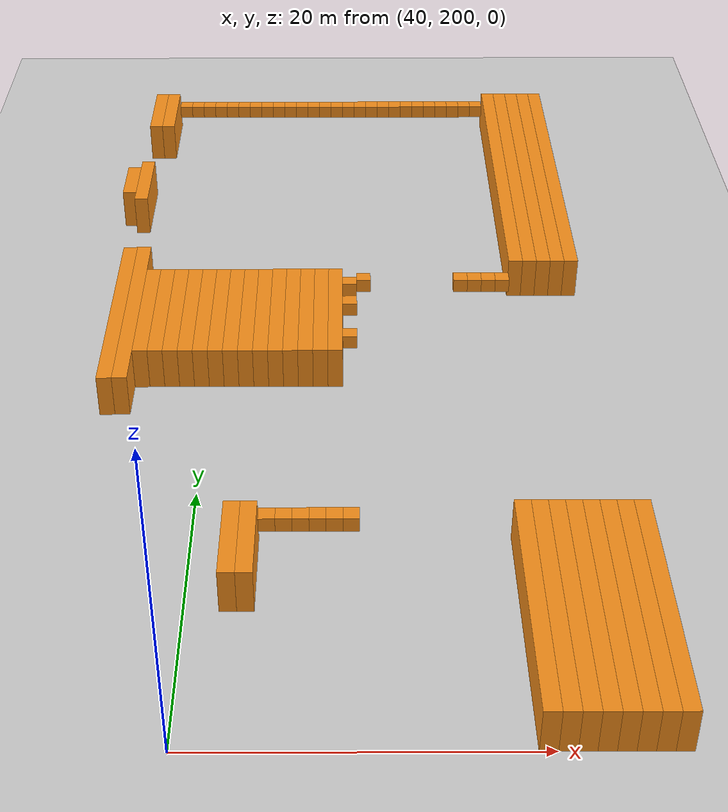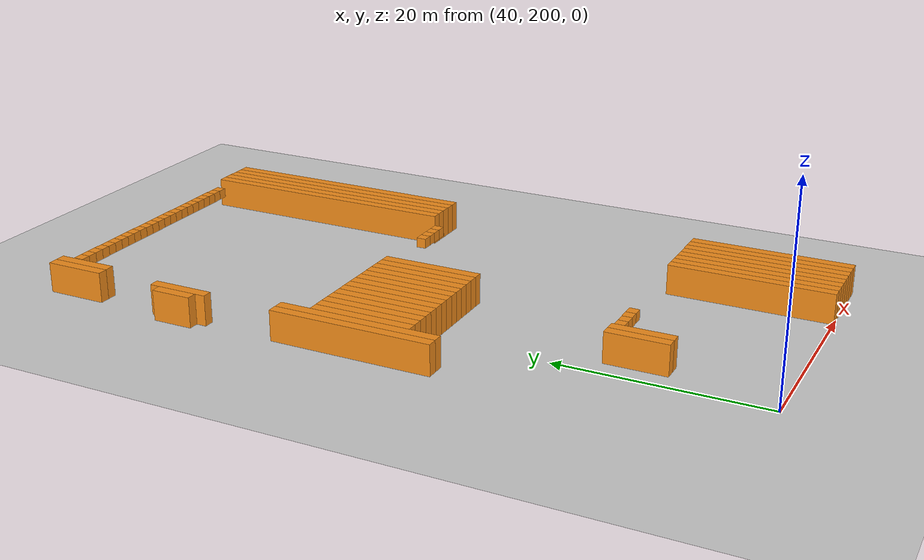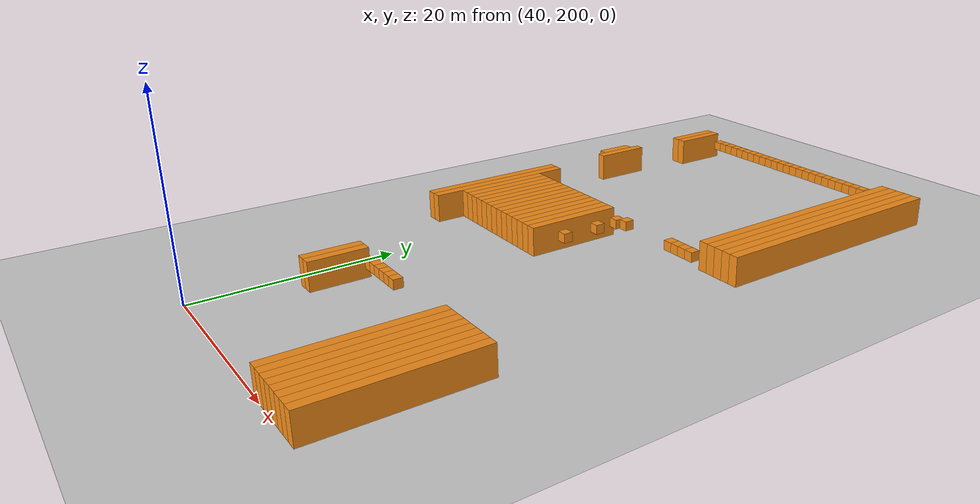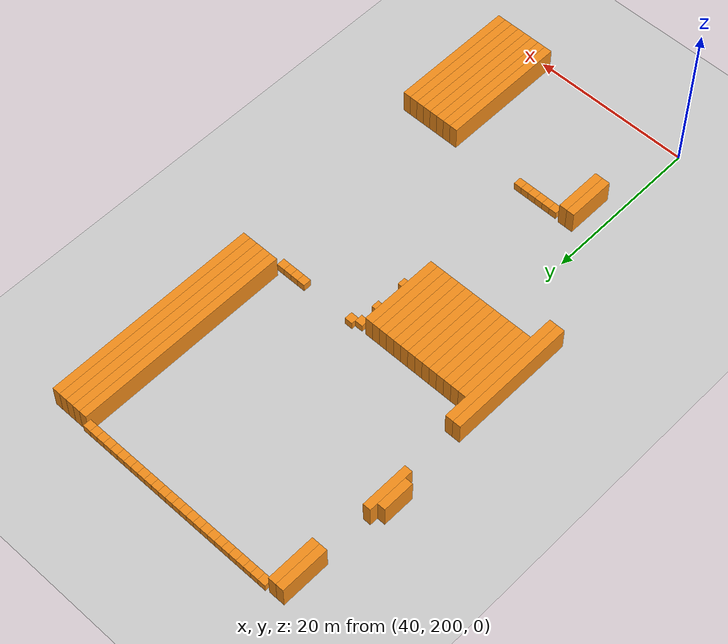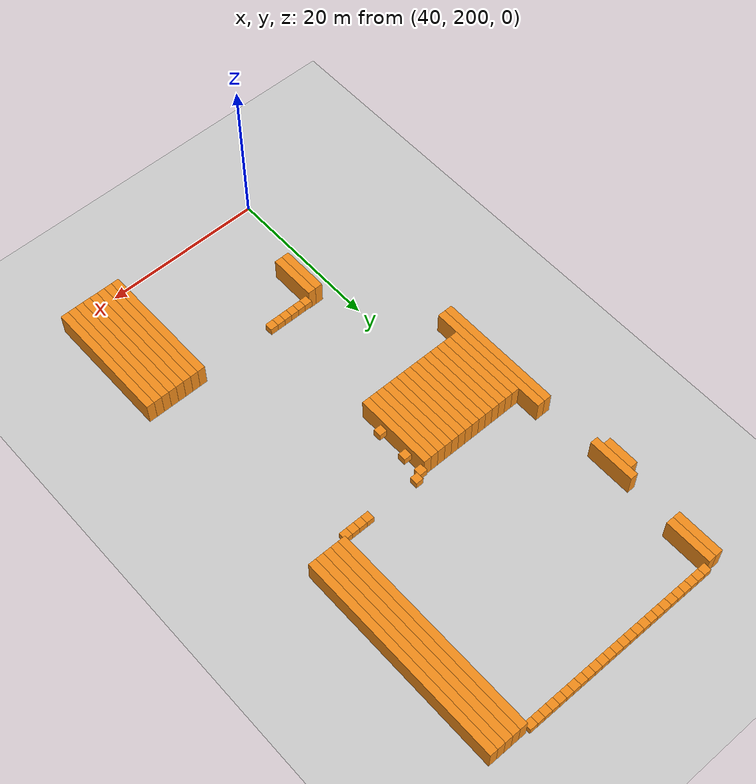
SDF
<sdf version="1.6">
 <world name="default">
  <include><uri>model://ground_plane</uri></include>
  <model name="unit_box_381">
   <pose>32.50   254.00     1.50 0 0 0</pose>
   <static>1</static>
   <link name="link">
    <inertial>
     <mass>5000</mass>
     <inertia><ixx>200</ixx><ixy>0</ixy><ixz>0</ixz><iyy>200</iyy><iyz>0</iyz><izz>200</izz></inertia>
    </inertial>
    <collision name="collision"><geometry><box><size>1 4 3</size></box></geometry></collision>
    <visual name="visual">
     <geometry><box><size>1 4 3</size></box></geometry>
     <material>
      <script><name>Gazebo/Orange</name><uri>file://media/materials/scripts/gazebo.material</uri></script>
     </material>
    </visual>
   </link>
  </model>
  <model name="unit_box_386">
   <pose>33.50   236.00     1.50 0 0 0</pose>
   <static>1</static>
   <link name="link">
    <inertial>
     <mass>5000</mass>
     <inertia><ixx>200</ixx><ixy>0</ixy><ixz>0</ixz><iyy>200</iyy><iyz>0</iyz><izz>200</izz></inertia>
    </inertial>
    <collision name="collision"><geometry><box><size>1 16 3</size></box></geometry></collision>
    <visual name="visual">
     <geometry><box><size>1 16 3</size></box></geometry>
     <material>
      <script><name>Gazebo/Orange</name><uri>file://media/materials/scripts/gazebo.material</uri></script>
     </material>
    </visual>
   </link>
  </model>
  <model name="unit_box_387">
   <pose>33.50   254.00     1.50 0 0 0</pose>
   <static>1</static>
   <link name="link">
    <inertial>
     <mass>5000</mass>
     <inertia><ixx>200</ixx><ixy>0</ixy><ixz>0</ixz><iyy>200</iyy><iyz>0</iyz><izz>200</izz></inertia>
    </inertial>
    <collision name="collision"><geometry><box><size>1 6 3</size></box></geometry></collision>
    <visual name="visual">
     <geometry><box><size>1 6 3</size></box></geometry>
     <material>
      <script><name>Gazebo/Orange</name><uri>file://media/materials/scripts/gazebo.material</uri></script>
     </material>
    </visual>
   </link>
  </model>
  <model name="unit_box_388">
   <pose>33.50   266.00     1.50 0 0 0</pose>
   <static>1</static>
   <link name="link">
    <inertial>
     <mass>5000</mass>
     <inertia><ixx>200</ixx><ixy>0</ixy><ixz>0</ixz><iyy>200</iyy><iyz>0</iyz><izz>200</izz></inertia>
    </inertial>
    <collision name="collision"><geometry><box><size>1 6 3</size></box></geometry></collision>
    <visual name="visual">
     <geometry><box><size>1 6 3</size></box></geometry>
     <material>
      <script><name>Gazebo/Orange</name><uri>file://media/materials/scripts/gazebo.material</uri></script>
     </material>
    </visual>
   </link>
  </model>
  <model name="unit_box_393">
   <pose>34.50   236.00     1.50 0 0 0</pose>
   <static>1</static>
   <link name="link">
    <inertial>
     <mass>5000</mass>
     <inertia><ixx>200</ixx><ixy>0</ixy><ixz>0</ixz><iyy>200</iyy><iyz>0</iyz><izz>200</izz></inertia>
    </inertial>
    <collision name="collision"><geometry><box><size>1 16 3</size></box></geometry></collision>
    <visual name="visual">
     <geometry><box><size>1 16 3</size></box></geometry>
     <material>
      <script><name>Gazebo/Orange</name><uri>file://media/materials/scripts/gazebo.material</uri></script>
     </material>
    </visual>
   </link>
  </model>
  <model name="unit_box_394">
   <pose>34.50   266.00     1.50 0 0 0</pose>
   <static>1</static>
   <link name="link">
    <inertial>
     <mass>5000</mass>
     <inertia><ixx>200</ixx><ixy>0</ixy><ixz>0</ixz><iyy>200</iyy><iyz>0</iyz><izz>200</izz></inertia>
    </inertial>
    <collision name="collision"><geometry><box><size>1 6 3</size></box></geometry></collision>
    <visual name="visual">
     <geometry><box><size>1 6 3</size></box></geometry>
     <material>
      <script><name>Gazebo/Orange</name><uri>file://media/materials/scripts/gazebo.material</uri></script>
     </material>
    </visual>
   </link>
  </model>
  <model name="unit_box_399">
   <pose>35.50   236.00     1.50 0 0 0</pose>
   <static>1</static>
   <link name="link">
    <inertial>
     <mass>5000</mass>
     <inertia><ixx>200</ixx><ixy>0</ixy><ixz>0</ixz><iyy>200</iyy><iyz>0</iyz><izz>200</izz></inertia>
    </inertial>
    <collision name="collision"><geometry><box><size>1 10 3</size></box></geometry></collision>
    <visual name="visual">
     <geometry><box><size>1 10 3</size></box></geometry>
     <material>
      <script><name>Gazebo/Orange</name><uri>file://media/materials/scripts/gazebo.material</uri></script>
     </material>
    </visual>
   </link>
  </model>
  <model name="unit_box_400">
   <pose>35.50   269.00     1.50 0 0 0</pose>
   <static>1</static>
   <link name="link">
    <inertial>
     <mass>5000</mass>
     <inertia><ixx>200</ixx><ixy>0</ixy><ixz>0</ixz><iyy>200</iyy><iyz>0</iyz><izz>200</izz></inertia>
    </inertial>
    <collision name="collision"><geometry><box><size>1 1 1</size></box></geometry></collision>
    <visual name="visual">
     <geometry><box><size>1 1 1</size></box></geometry>
     <material>
      <script><name>Gazebo/Orange</name><uri>file://media/materials/scripts/gazebo.material</uri></script>
     </material>
    </visual>
   </link>
  </model>
  <model name="unit_box_404">
   <pose>36.50   236.00     1.50 0 0 0</pose>
   <static>1</static>
   <link name="link">
    <inertial>
     <mass>5000</mass>
     <inertia><ixx>200</ixx><ixy>0</ixy><ixz>0</ixz><iyy>200</iyy><iyz>0</iyz><izz>200</izz></inertia>
    </inertial>
    <collision name="collision"><geometry><box><size>1 10 3</size></box></geometry></collision>
    <visual name="visual">
     <geometry><box><size>1 10 3</size></box></geometry>
     <material>
      <script><name>Gazebo/Orange</name><uri>file://media/materials/scripts/gazebo.material</uri></script>
     </material>
    </visual>
   </link>
  </model>
  <model name="unit_box_405">
   <pose>36.50   269.00     1.50 0 0 0</pose>
   <static>1</static>
   <link name="link">
    <inertial>
     <mass>5000</mass>
     <inertia><ixx>200</ixx><ixy>0</ixy><ixz>0</ixz><iyy>200</iyy><iyz>0</iyz><izz>200</izz></inertia>
    </inertial>
    <collision name="collision"><geometry><box><size>1 1 1</size></box></geometry></collision>
    <visual name="visual">
     <geometry><box><size>1 1 1</size></box></geometry>
     <material>
      <script><name>Gazebo/Orange</name><uri>file://media/materials/scripts/gazebo.material</uri></script>
     </material>
    </visual>
   </link>
  </model>
  <model name="unit_box_409">
   <pose>37.50   236.00     1.50 0 0 0</pose>
   <static>1</static>
   <link name="link">
    <inertial>
     <mass>5000</mass>
     <inertia><ixx>200</ixx><ixy>0</ixy><ixz>0</ixz><iyy>200</iyy><iyz>0</iyz><izz>200</izz></inertia>
    </inertial>
    <collision name="collision"><geometry><box><size>1 10 3</size></box></geometry></collision>
    <visual name="visual">
     <geometry><box><size>1 10 3</size></box></geometry>
     <material>
      <script><name>Gazebo/Orange</name><uri>file://media/materials/scripts/gazebo.material</uri></script>
     </material>
    </visual>
   </link>
  </model>
  <model name="unit_box_410">
   <pose>37.50   269.00     1.50 0 0 0</pose>
   <static>1</static>
   <link name="link">
    <inertial>
     <mass>5000</mass>
     <inertia><ixx>200</ixx><ixy>0</ixy><ixz>0</ixz><iyy>200</iyy><iyz>0</iyz><izz>200</izz></inertia>
    </inertial>
    <collision name="collision"><geometry><box><size>1 1 1</size></box></geometry></collision>
    <visual name="visual">
     <geometry><box><size>1 1 1</size></box></geometry>
     <material>
      <script><name>Gazebo/Orange</name><uri>file://media/materials/scripts/gazebo.material</uri></script>
     </material>
    </visual>
   </link>
  </model>
  <model name="unit_box_414">
   <pose>38.50   236.00     1.50 0 0 0</pose>
   <static>1</static>
   <link name="link">
    <inertial>
     <mass>5000</mass>
     <inertia><ixx>200</ixx><ixy>0</ixy><ixz>0</ixz><iyy>200</iyy><iyz>0</iyz><izz>200</izz></inertia>
    </inertial>
    <collision name="collision"><geometry><box><size>1 10 3</size></box></geometry></collision>
    <visual name="visual">
     <geometry><box><size>1 10 3</size></box></geometry>
     <material>
      <script><name>Gazebo/Orange</name><uri>file://media/materials/scripts/gazebo.material</uri></script>
     </material>
    </visual>
   </link>
  </model>
  <model name="unit_box_415">
   <pose>38.50   269.00     1.50 0 0 0</pose>
   <static>1</static>
   <link name="link">
    <inertial>
     <mass>5000</mass>
     <inertia><ixx>200</ixx><ixy>0</ixy><ixz>0</ixz><iyy>200</iyy><iyz>0</iyz><izz>200</izz></inertia>
    </inertial>
    <collision name="collision"><geometry><box><size>1 1 1</size></box></geometry></collision>
    <visual name="visual">
     <geometry><box><size>1 1 1</size></box></geometry>
     <material>
      <script><name>Gazebo/Orange</name><uri>file://media/materials/scripts/gazebo.material</uri></script>
     </material>
    </visual>
   </link>
  </model>
  <model name="unit_box_420">
   <pose>39.50   236.00     1.50 0 0 0</pose>
   <static>1</static>
   <link name="link">
    <inertial>
     <mass>5000</mass>
     <inertia><ixx>200</ixx><ixy>0</ixy><ixz>0</ixz><iyy>200</iyy><iyz>0</iyz><izz>200</izz></inertia>
    </inertial>
    <collision name="collision"><geometry><box><size>1 10 3</size></box></geometry></collision>
    <visual name="visual">
     <geometry><box><size>1 10 3</size></box></geometry>
     <material>
      <script><name>Gazebo/Orange</name><uri>file://media/materials/scripts/gazebo.material</uri></script>
     </material>
    </visual>
   </link>
  </model>
  <model name="unit_box_421">
   <pose>39.50   269.00     1.50 0 0 0</pose>
   <static>1</static>
   <link name="link">
    <inertial>
     <mass>5000</mass>
     <inertia><ixx>200</ixx><ixy>0</ixy><ixz>0</ixz><iyy>200</iyy><iyz>0</iyz><izz>200</izz></inertia>
    </inertial>
    <collision name="collision"><geometry><box><size>1 1 1</size></box></geometry></collision>
    <visual name="visual">
     <geometry><box><size>1 1 1</size></box></geometry>
     <material>
      <script><name>Gazebo/Orange</name><uri>file://media/materials/scripts/gazebo.material</uri></script>
     </material>
    </visual>
   </link>
  </model>
  <model name="unit_box_426">
   <pose>40.50   236.00     1.50 0 0 0</pose>
   <static>1</static>
   <link name="link">
    <inertial>
     <mass>5000</mass>
     <inertia><ixx>200</ixx><ixy>0</ixy><ixz>0</ixz><iyy>200</iyy><iyz>0</iyz><izz>200</izz></inertia>
    </inertial>
    <collision name="collision"><geometry><box><size>1 10 3</size></box></geometry></collision>
    <visual name="visual">
     <geometry><box><size>1 10 3</size></box></geometry>
     <material>
      <script><name>Gazebo/Orange</name><uri>file://media/materials/scripts/gazebo.material</uri></script>
     </material>
    </visual>
   </link>
  </model>
  <model name="unit_box_427">
   <pose>40.50   269.00     1.50 0 0 0</pose>
   <static>1</static>
   <link name="link">
    <inertial>
     <mass>5000</mass>
     <inertia><ixx>200</ixx><ixy>0</ixy><ixz>0</ixz><iyy>200</iyy><iyz>0</iyz><izz>200</izz></inertia>
    </inertial>
    <collision name="collision"><geometry><box><size>1 1 1</size></box></geometry></collision>
    <visual name="visual">
     <geometry><box><size>1 1 1</size></box></geometry>
     <material>
      <script><name>Gazebo/Orange</name><uri>file://media/materials/scripts/gazebo.material</uri></script>
     </material>
    </visual>
   </link>
  </model>
  <model name="unit_box_434">
   <pose>41.50   236.00     1.50 0 0 0</pose>
   <static>1</static>
   <link name="link">
    <inertial>
     <mass>5000</mass>
     <inertia><ixx>200</ixx><ixy>0</ixy><ixz>0</ixz><iyy>200</iyy><iyz>0</iyz><izz>200</izz></inertia>
    </inertial>
    <collision name="collision"><geometry><box><size>1 10 3</size></box></geometry></collision>
    <visual name="visual">
     <geometry><box><size>1 10 3</size></box></geometry>
     <material>
      <script><name>Gazebo/Orange</name><uri>file://media/materials/scripts/gazebo.material</uri></script>
     </material>
    </visual>
   </link>
  </model>
  <model name="unit_box_435">
   <pose>41.50   269.00     1.50 0 0 0</pose>
   <static>1</static>
   <link name="link">
    <inertial>
     <mass>5000</mass>
     <inertia><ixx>200</ixx><ixy>0</ixy><ixz>0</ixz><iyy>200</iyy><iyz>0</iyz><izz>200</izz></inertia>
    </inertial>
    <collision name="collision"><geometry><box><size>1 1 1</size></box></geometry></collision>
    <visual name="visual">
     <geometry><box><size>1 1 1</size></box></geometry>
     <material>
      <script><name>Gazebo/Orange</name><uri>file://media/materials/scripts/gazebo.material</uri></script>
     </material>
    </visual>
   </link>
  </model>
  <model name="unit_box_446">
   <pose>42.50   213.00     1.50 0 0 0</pose>
   <static>1</static>
   <link name="link">
    <inertial>
     <mass>5000</mass>
     <inertia><ixx>200</ixx><ixy>0</ixy><ixz>0</ixz><iyy>200</iyy><iyz>0</iyz><izz>200</izz></inertia>
    </inertial>
    <collision name="collision"><geometry><box><size>1 6 3</size></box></geometry></collision>
    <visual name="visual">
     <geometry><box><size>1 6 3</size></box></geometry>
     <material>
      <script><name>Gazebo/Orange</name><uri>file://media/materials/scripts/gazebo.material</uri></script>
     </material>
    </visual>
   </link>
  </model>
  <model name="unit_box_447">
   <pose>42.50   236.00     1.50 0 0 0</pose>
   <static>1</static>
   <link name="link">
    <inertial>
     <mass>5000</mass>
     <inertia><ixx>200</ixx><ixy>0</ixy><ixz>0</ixz><iyy>200</iyy><iyz>0</iyz><izz>200</izz></inertia>
    </inertial>
    <collision name="collision"><geometry><box><size>1 10 3</size></box></geometry></collision>
    <visual name="visual">
     <geometry><box><size>1 10 3</size></box></geometry>
     <material>
      <script><name>Gazebo/Orange</name><uri>file://media/materials/scripts/gazebo.material</uri></script>
     </material>
    </visual>
   </link>
  </model>
  <model name="unit_box_448">
   <pose>42.50   269.00     1.50 0 0 0</pose>
   <static>1</static>
   <link name="link">
    <inertial>
     <mass>5000</mass>
     <inertia><ixx>200</ixx><ixy>0</ixy><ixz>0</ixz><iyy>200</iyy><iyz>0</iyz><izz>200</izz></inertia>
    </inertial>
    <collision name="collision"><geometry><box><size>1 1 1</size></box></geometry></collision>
    <visual name="visual">
     <geometry><box><size>1 1 1</size></box></geometry>
     <material>
      <script><name>Gazebo/Orange</name><uri>file://media/materials/scripts/gazebo.material</uri></script>
     </material>
    </visual>
   </link>
  </model>
  <model name="unit_box_461">
   <pose>43.50   213.00     1.50 0 0 0</pose>
   <static>1</static>
   <link name="link">
    <inertial>
     <mass>5000</mass>
     <inertia><ixx>200</ixx><ixy>0</ixy><ixz>0</ixz><iyy>200</iyy><iyz>0</iyz><izz>200</izz></inertia>
    </inertial>
    <collision name="collision"><geometry><box><size>1 6 3</size></box></geometry></collision>
    <visual name="visual">
     <geometry><box><size>1 6 3</size></box></geometry>
     <material>
      <script><name>Gazebo/Orange</name><uri>file://media/materials/scripts/gazebo.material</uri></script>
     </material>
    </visual>
   </link>
  </model>
  <model name="unit_box_462">
   <pose>43.50   236.00     1.50 0 0 0</pose>
   <static>1</static>
   <link name="link">
    <inertial>
     <mass>5000</mass>
     <inertia><ixx>200</ixx><ixy>0</ixy><ixz>0</ixz><iyy>200</iyy><iyz>0</iyz><izz>200</izz></inertia>
    </inertial>
    <collision name="collision"><geometry><box><size>1 10 3</size></box></geometry></collision>
    <visual name="visual">
     <geometry><box><size>1 10 3</size></box></geometry>
     <material>
      <script><name>Gazebo/Orange</name><uri>file://media/materials/scripts/gazebo.material</uri></script>
     </material>
    </visual>
   </link>
  </model>
  <model name="unit_box_463">
   <pose>43.50   269.00     1.50 0 0 0</pose>
   <static>1</static>
   <link name="link">
    <inertial>
     <mass>5000</mass>
     <inertia><ixx>200</ixx><ixy>0</ixy><ixz>0</ixz><iyy>200</iyy><iyz>0</iyz><izz>200</izz></inertia>
    </inertial>
    <collision name="collision"><geometry><box><size>1 1 1</size></box></geometry></collision>
    <visual name="visual">
     <geometry><box><size>1 1 1</size></box></geometry>
     <material>
      <script><name>Gazebo/Orange</name><uri>file://media/materials/scripts/gazebo.material</uri></script>
     </material>
    </visual>
   </link>
  </model>
  <model name="unit_box_476">
   <pose>44.50   216.00     1.50 0 0 0</pose>
   <static>1</static>
   <link name="link">
    <inertial>
     <mass>5000</mass>
     <inertia><ixx>200</ixx><ixy>0</ixy><ixz>0</ixz><iyy>200</iyy><iyz>0</iyz><izz>200</izz></inertia>
    </inertial>
    <collision name="collision"><geometry><box><size>1 1 1</size></box></geometry></collision>
    <visual name="visual">
     <geometry><box><size>1 1 1</size></box></geometry>
     <material>
      <script><name>Gazebo/Orange</name><uri>file://media/materials/scripts/gazebo.material</uri></script>
     </material>
    </visual>
   </link>
  </model>
  <model name="unit_box_477">
   <pose>44.50   236.00     1.50 0 0 0</pose>
   <static>1</static>
   <link name="link">
    <inertial>
     <mass>5000</mass>
     <inertia><ixx>200</ixx><ixy>0</ixy><ixz>0</ixz><iyy>200</iyy><iyz>0</iyz><izz>200</izz></inertia>
    </inertial>
    <collision name="collision"><geometry><box><size>1 10 3</size></box></geometry></collision>
    <visual name="visual">
     <geometry><box><size>1 10 3</size></box></geometry>
     <material>
      <script><name>Gazebo/Orange</name><uri>file://media/materials/scripts/gazebo.material</uri></script>
     </material>
    </visual>
   </link>
  </model>
  <model name="unit_box_478">
   <pose>44.50   269.00     1.50 0 0 0</pose>
   <static>1</static>
   <link name="link">
    <inertial>
     <mass>5000</mass>
     <inertia><ixx>200</ixx><ixy>0</ixy><ixz>0</ixz><iyy>200</iyy><iyz>0</iyz><izz>200</izz></inertia>
    </inertial>
    <collision name="collision"><geometry><box><size>1 1 1</size></box></geometry></collision>
    <visual name="visual">
     <geometry><box><size>1 1 1</size></box></geometry>
     <material>
      <script><name>Gazebo/Orange</name><uri>file://media/materials/scripts/gazebo.material</uri></script>
     </material>
    </visual>
   </link>
  </model>
  <model name="unit_box_491">
   <pose>45.50   216.00     1.50 0 0 0</pose>
   <static>1</static>
   <link name="link">
    <inertial>
     <mass>5000</mass>
     <inertia><ixx>200</ixx><ixy>0</ixy><ixz>0</ixz><iyy>200</iyy><iyz>0</iyz><izz>200</izz></inertia>
    </inertial>
    <collision name="collision"><geometry><box><size>1 1 1</size></box></geometry></collision>
    <visual name="visual">
     <geometry><box><size>1 1 1</size></box></geometry>
     <material>
      <script><name>Gazebo/Orange</name><uri>file://media/materials/scripts/gazebo.material</uri></script>
     </material>
    </visual>
   </link>
  </model>
  <model name="unit_box_492">
   <pose>45.50   236.00     1.50 0 0 0</pose>
   <static>1</static>
   <link name="link">
    <inertial>
     <mass>5000</mass>
     <inertia><ixx>200</ixx><ixy>0</ixy><ixz>0</ixz><iyy>200</iyy><iyz>0</iyz><izz>200</izz></inertia>
    </inertial>
    <collision name="collision"><geometry><box><size>1 10 3</size></box></geometry></collision>
    <visual name="visual">
     <geometry><box><size>1 10 3</size></box></geometry>
     <material>
      <script><name>Gazebo/Orange</name><uri>file://media/materials/scripts/gazebo.material</uri></script>
     </material>
    </visual>
   </link>
  </model>
  <model name="unit_box_493">
   <pose>45.50   269.00     1.50 0 0 0</pose>
   <static>1</static>
   <link name="link">
    <inertial>
     <mass>5000</mass>
     <inertia><ixx>200</ixx><ixy>0</ixy><ixz>0</ixz><iyy>200</iyy><iyz>0</iyz><izz>200</izz></inertia>
    </inertial>
    <collision name="collision"><geometry><box><size>1 1 1</size></box></geometry></collision>
    <visual name="visual">
     <geometry><box><size>1 1 1</size></box></geometry>
     <material>
      <script><name>Gazebo/Orange</name><uri>file://media/materials/scripts/gazebo.material</uri></script>
     </material>
    </visual>
   </link>
  </model>
  <model name="unit_box_505">
   <pose>46.50   216.00     1.50 0 0 0</pose>
   <static>1</static>
   <link name="link">
    <inertial>
     <mass>5000</mass>
     <inertia><ixx>200</ixx><ixy>0</ixy><ixz>0</ixz><iyy>200</iyy><iyz>0</iyz><izz>200</izz></inertia>
    </inertial>
    <collision name="collision"><geometry><box><size>1 1 1</size></box></geometry></collision>
    <visual name="visual">
     <geometry><box><size>1 1 1</size></box></geometry>
     <material>
      <script><name>Gazebo/Orange</name><uri>file://media/materials/scripts/gazebo.material</uri></script>
     </material>
    </visual>
   </link>
  </model>
  <model name="unit_box_506">
   <pose>46.50   236.00     1.50 0 0 0</pose>
   <static>1</static>
   <link name="link">
    <inertial>
     <mass>5000</mass>
     <inertia><ixx>200</ixx><ixy>0</ixy><ixz>0</ixz><iyy>200</iyy><iyz>0</iyz><izz>200</izz></inertia>
    </inertial>
    <collision name="collision"><geometry><box><size>1 10 3</size></box></geometry></collision>
    <visual name="visual">
     <geometry><box><size>1 10 3</size></box></geometry>
     <material>
      <script><name>Gazebo/Orange</name><uri>file://media/materials/scripts/gazebo.material</uri></script>
     </material>
    </visual>
   </link>
  </model>
  <model name="unit_box_507">
   <pose>46.50   269.00     1.50 0 0 0</pose>
   <static>1</static>
   <link name="link">
    <inertial>
     <mass>5000</mass>
     <inertia><ixx>200</ixx><ixy>0</ixy><ixz>0</ixz><iyy>200</iyy><iyz>0</iyz><izz>200</izz></inertia>
    </inertial>
    <collision name="collision"><geometry><box><size>1 1 1</size></box></geometry></collision>
    <visual name="visual">
     <geometry><box><size>1 1 1</size></box></geometry>
     <material>
      <script><name>Gazebo/Orange</name><uri>file://media/materials/scripts/gazebo.material</uri></script>
     </material>
    </visual>
   </link>
  </model>
  <model name="unit_box_518">
   <pose>47.50   216.00     1.50 0 0 0</pose>
   <static>1</static>
   <link name="link">
    <inertial>
     <mass>5000</mass>
     <inertia><ixx>200</ixx><ixy>0</ixy><ixz>0</ixz><iyy>200</iyy><iyz>0</iyz><izz>200</izz></inertia>
    </inertial>
    <collision name="collision"><geometry><box><size>1 1 1</size></box></geometry></collision>
    <visual name="visual">
     <geometry><box><size>1 1 1</size></box></geometry>
     <material>
      <script><name>Gazebo/Orange</name><uri>file://media/materials/scripts/gazebo.material</uri></script>
     </material>
    </visual>
   </link>
  </model>
  <model name="unit_box_519">
   <pose>47.50   236.00     1.50 0 0 0</pose>
   <static>1</static>
   <link name="link">
    <inertial>
     <mass>5000</mass>
     <inertia><ixx>200</ixx><ixy>0</ixy><ixz>0</ixz><iyy>200</iyy><iyz>0</iyz><izz>200</izz></inertia>
    </inertial>
    <collision name="collision"><geometry><box><size>1 10 3</size></box></geometry></collision>
    <visual name="visual">
     <geometry><box><size>1 10 3</size></box></geometry>
     <material>
      <script><name>Gazebo/Orange</name><uri>file://media/materials/scripts/gazebo.material</uri></script>
     </material>
    </visual>
   </link>
  </model>
  <model name="unit_box_520">
   <pose>47.50   269.00     1.50 0 0 0</pose>
   <static>1</static>
   <link name="link">
    <inertial>
     <mass>5000</mass>
     <inertia><ixx>200</ixx><ixy>0</ixy><ixz>0</ixz><iyy>200</iyy><iyz>0</iyz><izz>200</izz></inertia>
    </inertial>
    <collision name="collision"><geometry><box><size>1 1 1</size></box></geometry></collision>
    <visual name="visual">
     <geometry><box><size>1 1 1</size></box></geometry>
     <material>
      <script><name>Gazebo/Orange</name><uri>file://media/materials/scripts/gazebo.material</uri></script>
     </material>
    </visual>
   </link>
  </model>
  <model name="unit_box_531">
   <pose>48.50   216.00     1.50 0 0 0</pose>
   <static>1</static>
   <link name="link">
    <inertial>
     <mass>5000</mass>
     <inertia><ixx>200</ixx><ixy>0</ixy><ixz>0</ixz><iyy>200</iyy><iyz>0</iyz><izz>200</izz></inertia>
    </inertial>
    <collision name="collision"><geometry><box><size>1 1 1</size></box></geometry></collision>
    <visual name="visual">
     <geometry><box><size>1 1 1</size></box></geometry>
     <material>
      <script><name>Gazebo/Orange</name><uri>file://media/materials/scripts/gazebo.material</uri></script>
     </material>
    </visual>
   </link>
  </model>
  <model name="unit_box_532">
   <pose>48.50   236.00     1.50 0 0 0</pose>
   <static>1</static>
   <link name="link">
    <inertial>
     <mass>5000</mass>
     <inertia><ixx>200</ixx><ixy>0</ixy><ixz>0</ixz><iyy>200</iyy><iyz>0</iyz><izz>200</izz></inertia>
    </inertial>
    <collision name="collision"><geometry><box><size>1 10 3</size></box></geometry></collision>
    <visual name="visual">
     <geometry><box><size>1 10 3</size></box></geometry>
     <material>
      <script><name>Gazebo/Orange</name><uri>file://media/materials/scripts/gazebo.material</uri></script>
     </material>
    </visual>
   </link>
  </model>
  <model name="unit_box_533">
   <pose>48.50   269.00     1.50 0 0 0</pose>
   <static>1</static>
   <link name="link">
    <inertial>
     <mass>5000</mass>
     <inertia><ixx>200</ixx><ixy>0</ixy><ixz>0</ixz><iyy>200</iyy><iyz>0</iyz><izz>200</izz></inertia>
    </inertial>
    <collision name="collision"><geometry><box><size>1 1 1</size></box></geometry></collision>
    <visual name="visual">
     <geometry><box><size>1 1 1</size></box></geometry>
     <material>
      <script><name>Gazebo/Orange</name><uri>file://media/materials/scripts/gazebo.material</uri></script>
     </material>
    </visual>
   </link>
  </model>
  <model name="unit_box_544">
   <pose>49.50   216.00     1.50 0 0 0</pose>
   <static>1</static>
   <link name="link">
    <inertial>
     <mass>5000</mass>
     <inertia><ixx>200</ixx><ixy>0</ixy><ixz>0</ixz><iyy>200</iyy><iyz>0</iyz><izz>200</izz></inertia>
    </inertial>
    <collision name="collision"><geometry><box><size>1 1 1</size></box></geometry></collision>
    <visual name="visual">
     <geometry><box><size>1 1 1</size></box></geometry>
     <material>
      <script><name>Gazebo/Orange</name><uri>file://media/materials/scripts/gazebo.material</uri></script>
     </material>
    </visual>
   </link>
  </model>
  <model name="unit_box_545">
   <pose>49.50   234.50     1.50 0 0 0</pose>
   <static>1</static>
   <link name="link">
    <inertial>
     <mass>5000</mass>
     <inertia><ixx>200</ixx><ixy>0</ixy><ixz>0</ixz><iyy>200</iyy><iyz>0</iyz><izz>200</izz></inertia>
    </inertial>
    <collision name="collision"><geometry><box><size>1 1 1</size></box></geometry></collision>
    <visual name="visual">
     <geometry><box><size>1 1 1</size></box></geometry>
     <material>
      <script><name>Gazebo/Orange</name><uri>file://media/materials/scripts/gazebo.material</uri></script>
     </material>
    </visual>
   </link>
  </model>
  <model name="unit_box_546">
   <pose>49.50   238.50     1.50 0 0 0</pose>
   <static>1</static>
   <link name="link">
    <inertial>
     <mass>5000</mass>
     <inertia><ixx>200</ixx><ixy>0</ixy><ixz>0</ixz><iyy>200</iyy><iyz>0</iyz><izz>200</izz></inertia>
    </inertial>
    <collision name="collision"><geometry><box><size>1 1 1</size></box></geometry></collision>
    <visual name="visual">
     <geometry><box><size>1 1 1</size></box></geometry>
     <material>
      <script><name>Gazebo/Orange</name><uri>file://media/materials/scripts/gazebo.material</uri></script>
     </material>
    </visual>
   </link>
  </model>
  <model name="unit_box_547">
   <pose>49.50   241.00     1.50 0 0 0</pose>
   <static>1</static>
   <link name="link">
    <inertial>
     <mass>5000</mass>
     <inertia><ixx>200</ixx><ixy>0</ixy><ixz>0</ixz><iyy>200</iyy><iyz>0</iyz><izz>200</izz></inertia>
    </inertial>
    <collision name="collision"><geometry><box><size>1 1 1</size></box></geometry></collision>
    <visual name="visual">
     <geometry><box><size>1 1 1</size></box></geometry>
     <material>
      <script><name>Gazebo/Orange</name><uri>file://media/materials/scripts/gazebo.material</uri></script>
     </material>
    </visual>
   </link>
  </model>
  <model name="unit_box_548">
   <pose>49.50   269.00     1.50 0 0 0</pose>
   <static>1</static>
   <link name="link">
    <inertial>
     <mass>5000</mass>
     <inertia><ixx>200</ixx><ixy>0</ixy><ixz>0</ixz><iyy>200</iyy><iyz>0</iyz><izz>200</izz></inertia>
    </inertial>
    <collision name="collision"><geometry><box><size>1 1 1</size></box></geometry></collision>
    <visual name="visual">
     <geometry><box><size>1 1 1</size></box></geometry>
     <material>
      <script><name>Gazebo/Orange</name><uri>file://media/materials/scripts/gazebo.material</uri></script>
     </material>
    </visual>
   </link>
  </model>
  <model name="unit_box_559">
   <pose>50.50   241.50     1.50 0 0 0</pose>
   <static>1</static>
   <link name="link">
    <inertial>
     <mass>5000</mass>
     <inertia><ixx>200</ixx><ixy>0</ixy><ixz>0</ixz><iyy>200</iyy><iyz>0</iyz><izz>200</izz></inertia>
    </inertial>
    <collision name="collision"><geometry><box><size>1 1 1</size></box></geometry></collision>
    <visual name="visual">
     <geometry><box><size>1 1 1</size></box></geometry>
     <material>
      <script><name>Gazebo/Orange</name><uri>file://media/materials/scripts/gazebo.material</uri></script>
     </material>
    </visual>
   </link>
  </model>
  <model name="unit_box_560">
   <pose>50.50   269.00     1.50 0 0 0</pose>
   <static>1</static>
   <link name="link">
    <inertial>
     <mass>5000</mass>
     <inertia><ixx>200</ixx><ixy>0</ixy><ixz>0</ixz><iyy>200</iyy><iyz>0</iyz><izz>200</izz></inertia>
    </inertial>
    <collision name="collision"><geometry><box><size>1 1 1</size></box></geometry></collision>
    <visual name="visual">
     <geometry><box><size>1 1 1</size></box></geometry>
     <material>
      <script><name>Gazebo/Orange</name><uri>file://media/materials/scripts/gazebo.material</uri></script>
     </material>
    </visual>
   </link>
  </model>
  <model name="unit_box_571">
   <pose>51.50   269.00     1.50 0 0 0</pose>
   <static>1</static>
   <link name="link">
    <inertial>
     <mass>5000</mass>
     <inertia><ixx>200</ixx><ixy>0</ixy><ixz>0</ixz><iyy>200</iyy><iyz>0</iyz><izz>200</izz></inertia>
    </inertial>
    <collision name="collision"><geometry><box><size>1 1 1</size></box></geometry></collision>
    <visual name="visual">
     <geometry><box><size>1 1 1</size></box></geometry>
     <material>
      <script><name>Gazebo/Orange</name><uri>file://media/materials/scripts/gazebo.material</uri></script>
     </material>
    </visual>
   </link>
  </model>
  <model name="unit_box_581">
   <pose>52.50   269.00     1.50 0 0 0</pose>
   <static>1</static>
   <link name="link">
    <inertial>
     <mass>5000</mass>
     <inertia><ixx>200</ixx><ixy>0</ixy><ixz>0</ixz><iyy>200</iyy><iyz>0</iyz><izz>200</izz></inertia>
    </inertial>
    <collision name="collision"><geometry><box><size>1 1 1</size></box></geometry></collision>
    <visual name="visual">
     <geometry><box><size>1 1 1</size></box></geometry>
     <material>
      <script><name>Gazebo/Orange</name><uri>file://media/materials/scripts/gazebo.material</uri></script>
     </material>
    </visual>
   </link>
  </model>
  <model name="unit_box_592">
   <pose>53.50   269.00     1.50 0 0 0</pose>
   <static>1</static>
   <link name="link">
    <inertial>
     <mass>5000</mass>
     <inertia><ixx>200</ixx><ixy>0</ixy><ixz>0</ixz><iyy>200</iyy><iyz>0</iyz><izz>200</izz></inertia>
    </inertial>
    <collision name="collision"><geometry><box><size>1 1 1</size></box></geometry></collision>
    <visual name="visual">
     <geometry><box><size>1 1 1</size></box></geometry>
     <material>
      <script><name>Gazebo/Orange</name><uri>file://media/materials/scripts/gazebo.material</uri></script>
     </material>
    </visual>
   </link>
  </model>
  <model name="unit_box_601">
   <pose>54.50   269.00     1.50 0 0 0</pose>
   <static>1</static>
   <link name="link">
    <inertial>
     <mass>5000</mass>
     <inertia><ixx>200</ixx><ixy>0</ixy><ixz>0</ixz><iyy>200</iyy><iyz>0</iyz><izz>200</izz></inertia>
    </inertial>
    <collision name="collision"><geometry><box><size>1 1 1</size></box></geometry></collision>
    <visual name="visual">
     <geometry><box><size>1 1 1</size></box></geometry>
     <material>
      <script><name>Gazebo/Orange</name><uri>file://media/materials/scripts/gazebo.material</uri></script>
     </material>
    </visual>
   </link>
  </model>
  <model name="unit_box_610">
   <pose>55.50   269.00     1.50 0 0 0</pose>
   <static>1</static>
   <link name="link">
    <inertial>
     <mass>5000</mass>
     <inertia><ixx>200</ixx><ixy>0</ixy><ixz>0</ixz><iyy>200</iyy><iyz>0</iyz><izz>200</izz></inertia>
    </inertial>
    <collision name="collision"><geometry><box><size>1 1 1</size></box></geometry></collision>
    <visual name="visual">
     <geometry><box><size>1 1 1</size></box></geometry>
     <material>
      <script><name>Gazebo/Orange</name><uri>file://media/materials/scripts/gazebo.material</uri></script>
     </material>
    </visual>
   </link>
  </model>
  <model name="unit_box_620">
   <pose>56.50   269.00     1.50 0 0 0</pose>
   <static>1</static>
   <link name="link">
    <inertial>
     <mass>5000</mass>
     <inertia><ixx>200</ixx><ixy>0</ixy><ixz>0</ixz><iyy>200</iyy><iyz>0</iyz><izz>200</izz></inertia>
    </inertial>
    <collision name="collision"><geometry><box><size>1 1 1</size></box></geometry></collision>
    <visual name="visual">
     <geometry><box><size>1 1 1</size></box></geometry>
     <material>
      <script><name>Gazebo/Orange</name><uri>file://media/materials/scripts/gazebo.material</uri></script>
     </material>
    </visual>
   </link>
  </model>
  <model name="unit_box_630">
   <pose>57.50   241.50     1.50 0 0 0</pose>
   <static>1</static>
   <link name="link">
    <inertial>
     <mass>5000</mass>
     <inertia><ixx>200</ixx><ixy>0</ixy><ixz>0</ixz><iyy>200</iyy><iyz>0</iyz><izz>200</izz></inertia>
    </inertial>
    <collision name="collision"><geometry><box><size>1 1 1</size></box></geometry></collision>
    <visual name="visual">
     <geometry><box><size>1 1 1</size></box></geometry>
     <material>
      <script><name>Gazebo/Orange</name><uri>file://media/materials/scripts/gazebo.material</uri></script>
     </material>
    </visual>
   </link>
  </model>
  <model name="unit_box_631">
   <pose>57.50   269.00     1.50 0 0 0</pose>
   <static>1</static>
   <link name="link">
    <inertial>
     <mass>5000</mass>
     <inertia><ixx>200</ixx><ixy>0</ixy><ixz>0</ixz><iyy>200</iyy><iyz>0</iyz><izz>200</izz></inertia>
    </inertial>
    <collision name="collision"><geometry><box><size>1 1 1</size></box></geometry></collision>
    <visual name="visual">
     <geometry><box><size>1 1 1</size></box></geometry>
     <material>
      <script><name>Gazebo/Orange</name><uri>file://media/materials/scripts/gazebo.material</uri></script>
     </material>
    </visual>
   </link>
  </model>
  <model name="unit_box_640">
   <pose>58.50   241.50     1.50 0 0 0</pose>
   <static>1</static>
   <link name="link">
    <inertial>
     <mass>5000</mass>
     <inertia><ixx>200</ixx><ixy>0</ixy><ixz>0</ixz><iyy>200</iyy><iyz>0</iyz><izz>200</izz></inertia>
    </inertial>
    <collision name="collision"><geometry><box><size>1 1 1</size></box></geometry></collision>
    <visual name="visual">
     <geometry><box><size>1 1 1</size></box></geometry>
     <material>
      <script><name>Gazebo/Orange</name><uri>file://media/materials/scripts/gazebo.material</uri></script>
     </material>
    </visual>
   </link>
  </model>
  <model name="unit_box_641">
   <pose>58.50   269.00     1.50 0 0 0</pose>
   <static>1</static>
   <link name="link">
    <inertial>
     <mass>5000</mass>
     <inertia><ixx>200</ixx><ixy>0</ixy><ixz>0</ixz><iyy>200</iyy><iyz>0</iyz><izz>200</izz></inertia>
    </inertial>
    <collision name="collision"><geometry><box><size>1 1 1</size></box></geometry></collision>
    <visual name="visual">
     <geometry><box><size>1 1 1</size></box></geometry>
     <material>
      <script><name>Gazebo/Orange</name><uri>file://media/materials/scripts/gazebo.material</uri></script>
     </material>
    </visual>
   </link>
  </model>
  <model name="unit_box_651">
   <pose>59.50   208.00     1.50 0 0 0</pose>
   <static>1</static>
   <link name="link">
    <inertial>
     <mass>5000</mass>
     <inertia><ixx>200</ixx><ixy>0</ixy><ixz>0</ixz><iyy>200</iyy><iyz>0</iyz><izz>200</izz></inertia>
    </inertial>
    <collision name="collision"><geometry><box><size>1 16 3</size></box></geometry></collision>
    <visual name="visual">
     <geometry><box><size>1 16 3</size></box></geometry>
     <material>
      <script><name>Gazebo/Orange</name><uri>file://media/materials/scripts/gazebo.material</uri></script>
     </material>
    </visual>
   </link>
  </model>
  <model name="unit_box_652">
   <pose>59.50   241.50     1.50 0 0 0</pose>
   <static>1</static>
   <link name="link">
    <inertial>
     <mass>5000</mass>
     <inertia><ixx>200</ixx><ixy>0</ixy><ixz>0</ixz><iyy>200</iyy><iyz>0</iyz><izz>200</izz></inertia>
    </inertial>
    <collision name="collision"><geometry><box><size>1 1 1</size></box></geometry></collision>
    <visual name="visual">
     <geometry><box><size>1 1 1</size></box></geometry>
     <material>
      <script><name>Gazebo/Orange</name><uri>file://media/materials/scripts/gazebo.material</uri></script>
     </material>
    </visual>
   </link>
  </model>
  <model name="unit_box_653">
   <pose>59.50   269.00     1.50 0 0 0</pose>
   <static>1</static>
   <link name="link">
    <inertial>
     <mass>5000</mass>
     <inertia><ixx>200</ixx><ixy>0</ixy><ixz>0</ixz><iyy>200</iyy><iyz>0</iyz><izz>200</izz></inertia>
    </inertial>
    <collision name="collision"><geometry><box><size>1 1 1</size></box></geometry></collision>
    <visual name="visual">
     <geometry><box><size>1 1 1</size></box></geometry>
     <material>
      <script><name>Gazebo/Orange</name><uri>file://media/materials/scripts/gazebo.material</uri></script>
     </material>
    </visual>
   </link>
  </model>
  <model name="unit_box_663">
   <pose>60.50   208.00     1.50 0 0 0</pose>
   <static>1</static>
   <link name="link">
    <inertial>
     <mass>5000</mass>
     <inertia><ixx>200</ixx><ixy>0</ixy><ixz>0</ixz><iyy>200</iyy><iyz>0</iyz><izz>200</izz></inertia>
    </inertial>
    <collision name="collision"><geometry><box><size>1 16 3</size></box></geometry></collision>
    <visual name="visual">
     <geometry><box><size>1 16 3</size></box></geometry>
     <material>
      <script><name>Gazebo/Orange</name><uri>file://media/materials/scripts/gazebo.material</uri></script>
     </material>
    </visual>
   </link>
  </model>
  <model name="unit_box_664">
   <pose>60.50   241.50     1.50 0 0 0</pose>
   <static>1</static>
   <link name="link">
    <inertial>
     <mass>5000</mass>
     <inertia><ixx>200</ixx><ixy>0</ixy><ixz>0</ixz><iyy>200</iyy><iyz>0</iyz><izz>200</izz></inertia>
    </inertial>
    <collision name="collision"><geometry><box><size>1 1 1</size></box></geometry></collision>
    <visual name="visual">
     <geometry><box><size>1 1 1</size></box></geometry>
     <material>
      <script><name>Gazebo/Orange</name><uri>file://media/materials/scripts/gazebo.material</uri></script>
     </material>
    </visual>
   </link>
  </model>
  <model name="unit_box_665">
   <pose>60.50   269.00     1.50 0 0 0</pose>
   <static>1</static>
   <link name="link">
    <inertial>
     <mass>5000</mass>
     <inertia><ixx>200</ixx><ixy>0</ixy><ixz>0</ixz><iyy>200</iyy><iyz>0</iyz><izz>200</izz></inertia>
    </inertial>
    <collision name="collision"><geometry><box><size>1 1 1</size></box></geometry></collision>
    <visual name="visual">
     <geometry><box><size>1 1 1</size></box></geometry>
     <material>
      <script><name>Gazebo/Orange</name><uri>file://media/materials/scripts/gazebo.material</uri></script>
     </material>
    </visual>
   </link>
  </model>
  <model name="unit_box_674">
   <pose>61.50   208.00     1.50 0 0 0</pose>
   <static>1</static>
   <link name="link">
    <inertial>
     <mass>5000</mass>
     <inertia><ixx>200</ixx><ixy>0</ixy><ixz>0</ixz><iyy>200</iyy><iyz>0</iyz><izz>200</izz></inertia>
    </inertial>
    <collision name="collision"><geometry><box><size>1 16 3</size></box></geometry></collision>
    <visual name="visual">
     <geometry><box><size>1 16 3</size></box></geometry>
     <material>
      <script><name>Gazebo/Orange</name><uri>file://media/materials/scripts/gazebo.material</uri></script>
     </material>
    </visual>
   </link>
  </model>
  <model name="unit_box_675">
   <pose>61.50   255.50     1.50 0 0 0</pose>
   <static>1</static>
   <link name="link">
    <inertial>
     <mass>5000</mass>
     <inertia><ixx>200</ixx><ixy>0</ixy><ixz>0</ixz><iyy>200</iyy><iyz>0</iyz><izz>200</izz></inertia>
    </inertial>
    <collision name="collision"><geometry><box><size>1 27 3</size></box></geometry></collision>
    <visual name="visual">
     <geometry><box><size>1 27 3</size></box></geometry>
     <material>
      <script><name>Gazebo/Orange</name><uri>file://media/materials/scripts/gazebo.material</uri></script>
     </material>
    </visual>
   </link>
  </model>
  <model name="unit_box_684">
   <pose>62.50   208.00     1.50 0 0 0</pose>
   <static>1</static>
   <link name="link">
    <inertial>
     <mass>5000</mass>
     <inertia><ixx>200</ixx><ixy>0</ixy><ixz>0</ixz><iyy>200</iyy><iyz>0</iyz><izz>200</izz></inertia>
    </inertial>
    <collision name="collision"><geometry><box><size>1 16 3</size></box></geometry></collision>
    <visual name="visual">
     <geometry><box><size>1 16 3</size></box></geometry>
     <material>
      <script><name>Gazebo/Orange</name><uri>file://media/materials/scripts/gazebo.material</uri></script>
     </material>
    </visual>
   </link>
  </model>
  <model name="unit_box_685">
   <pose>62.50   255.50     1.50 0 0 0</pose>
   <static>1</static>
   <link name="link">
    <inertial>
     <mass>5000</mass>
     <inertia><ixx>200</ixx><ixy>0</ixy><ixz>0</ixz><iyy>200</iyy><iyz>0</iyz><izz>200</izz></inertia>
    </inertial>
    <collision name="collision"><geometry><box><size>1 27 3</size></box></geometry></collision>
    <visual name="visual">
     <geometry><box><size>1 27 3</size></box></geometry>
     <material>
      <script><name>Gazebo/Orange</name><uri>file://media/materials/scripts/gazebo.material</uri></script>
     </material>
    </visual>
   </link>
  </model>
  <model name="unit_box_694">
   <pose>63.50   208.00     1.50 0 0 0</pose>
   <static>1</static>
   <link name="link">
    <inertial>
     <mass>5000</mass>
     <inertia><ixx>200</ixx><ixy>0</ixy><ixz>0</ixz><iyy>200</iyy><iyz>0</iyz><izz>200</izz></inertia>
    </inertial>
    <collision name="collision"><geometry><box><size>1 16 3</size></box></geometry></collision>
    <visual name="visual">
     <geometry><box><size>1 16 3</size></box></geometry>
     <material>
      <script><name>Gazebo/Orange</name><uri>file://media/materials/scripts/gazebo.material</uri></script>
     </material>
    </visual>
   </link>
  </model>
  <model name="unit_box_695">
   <pose>63.50   255.50     1.50 0 0 0</pose>
   <static>1</static>
   <link name="link">
    <inertial>
     <mass>5000</mass>
     <inertia><ixx>200</ixx><ixy>0</ixy><ixz>0</ixz><iyy>200</iyy><iyz>0</iyz><izz>200</izz></inertia>
    </inertial>
    <collision name="collision"><geometry><box><size>1 27 3</size></box></geometry></collision>
    <visual name="visual">
     <geometry><box><size>1 27 3</size></box></geometry>
     <material>
      <script><name>Gazebo/Orange</name><uri>file://media/materials/scripts/gazebo.material</uri></script>
     </material>
    </visual>
   </link>
  </model>
  <model name="unit_box_703">
   <pose>64.50   208.00     1.50 0 0 0</pose>
   <static>1</static>
   <link name="link">
    <inertial>
     <mass>5000</mass>
     <inertia><ixx>200</ixx><ixy>0</ixy><ixz>0</ixz><iyy>200</iyy><iyz>0</iyz><izz>200</izz></inertia>
    </inertial>
    <collision name="collision"><geometry><box><size>1 16 3</size></box></geometry></collision>
    <visual name="visual">
     <geometry><box><size>1 16 3</size></box></geometry>
     <material>
      <script><name>Gazebo/Orange</name><uri>file://media/materials/scripts/gazebo.material</uri></script>
     </material>
    </visual>
   </link>
  </model>
  <model name="unit_box_704">
   <pose>64.50   255.50     1.50 0 0 0</pose>
   <static>1</static>
   <link name="link">
    <inertial>
     <mass>5000</mass>
     <inertia><ixx>200</ixx><ixy>0</ixy><ixz>0</ixz><iyy>200</iyy><iyz>0</iyz><izz>200</izz></inertia>
    </inertial>
    <collision name="collision"><geometry><box><size>1 27 3</size></box></geometry></collision>
    <visual name="visual">
     <geometry><box><size>1 27 3</size></box></geometry>
     <material>
      <script><name>Gazebo/Orange</name><uri>file://media/materials/scripts/gazebo.material</uri></script>
     </material>
    </visual>
   </link>
  </model>
  <model name="unit_box_712">
   <pose>65.50   208.00     1.50 0 0 0</pose>
   <static>1</static>
   <link name="link">
    <inertial>
     <mass>5000</mass>
     <inertia><ixx>200</ixx><ixy>0</ixy><ixz>0</ixz><iyy>200</iyy><iyz>0</iyz><izz>200</izz></inertia>
    </inertial>
    <collision name="collision"><geometry><box><size>1 16 3</size></box></geometry></collision>
    <visual name="visual">
     <geometry><box><size>1 16 3</size></box></geometry>
     <material>
      <script><name>Gazebo/Orange</name><uri>file://media/materials/scripts/gazebo.material</uri></script>
     </material>
    </visual>
   </link>
  </model>
  <model name="unit_box_713">
   <pose>65.50   255.50     1.50 0 0 0</pose>
   <static>1</static>
   <link name="link">
    <inertial>
     <mass>5000</mass>
     <inertia><ixx>200</ixx><ixy>0</ixy><ixz>0</ixz><iyy>200</iyy><iyz>0</iyz><izz>200</izz></inertia>
    </inertial>
    <collision name="collision"><geometry><box><size>1 27 3</size></box></geometry></collision>
    <visual name="visual">
     <geometry><box><size>1 27 3</size></box></geometry>
     <material>
      <script><name>Gazebo/Orange</name><uri>file://media/materials/scripts/gazebo.material</uri></script>
     </material>
    </visual>
   </link>
  </model>
  <model name="unit_box_721">
   <pose>66.50   208.00     1.50 0 0 0</pose>
   <static>1</static>
   <link name="link">
    <inertial>
     <mass>5000</mass>
     <inertia><ixx>200</ixx><ixy>0</ixy><ixz>0</ixz><iyy>200</iyy><iyz>0</iyz><izz>200</izz></inertia>
    </inertial>
    <collision name="collision"><geometry><box><size>1 16 3</size></box></geometry></collision>
    <visual name="visual">
     <geometry><box><size>1 16 3</size></box></geometry>
     <material>
      <script><name>Gazebo/Orange</name><uri>file://media/materials/scripts/gazebo.material</uri></script>
     </material>
    </visual>
   </link>
  </model>
 </world>
</sdf>
